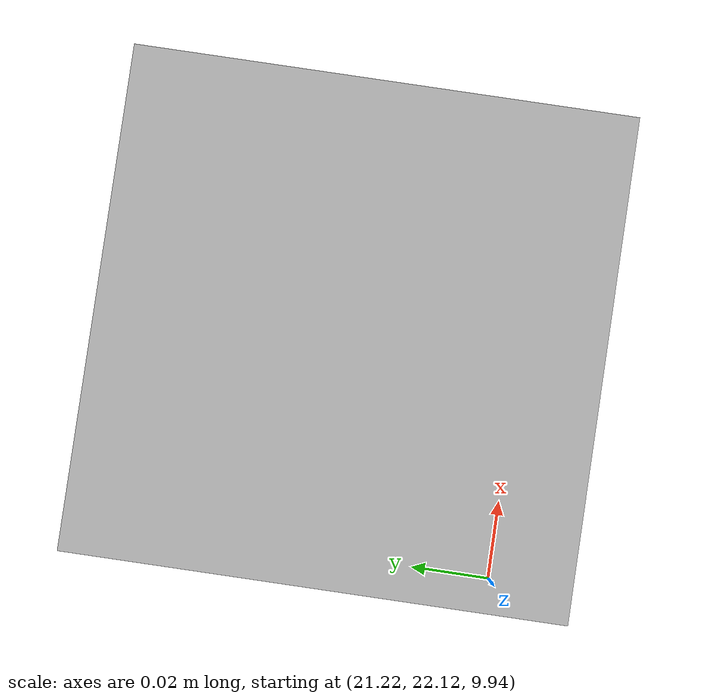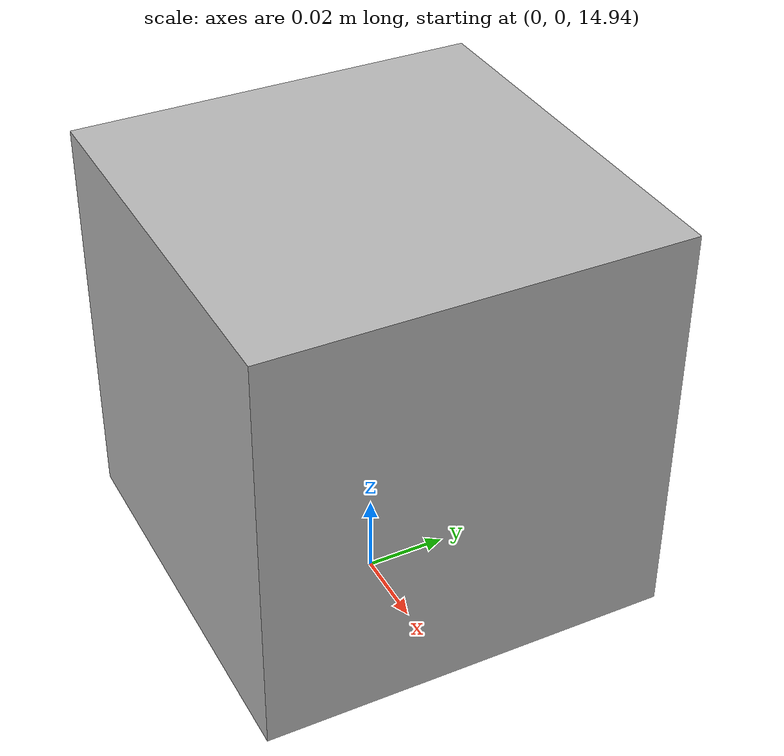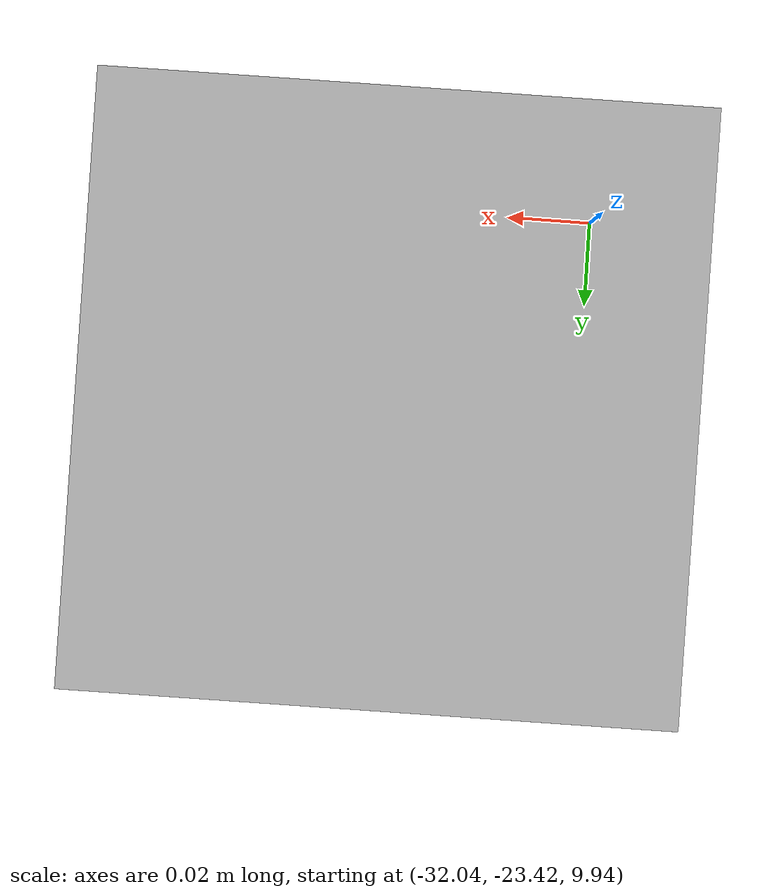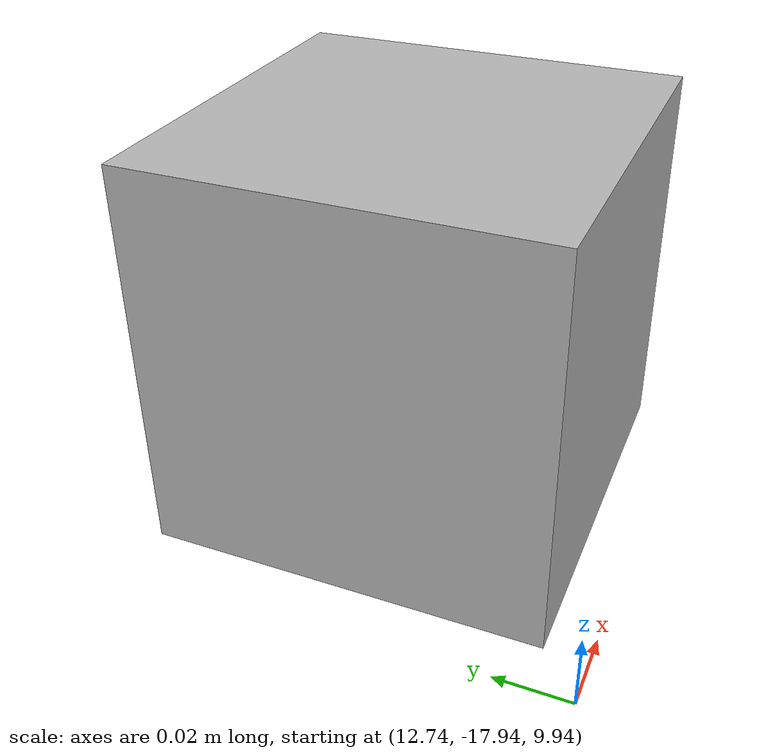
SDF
<sdf version="1.7">
 <world name="default">
  <scene>
   <ambient>0.4 0.4 0.4 1</ambient>
   <background>0.7 0.7 0.7 1</background>
   <shadows>1</shadows>
   <sky><clouds><speed>12</speed></clouds></sky>
   <fog><type>linear</type><start>10</start><end>500</end><density>1</density></fog>
  </scene>
  <include><uri>model://ground_plane</uri></include>
  <include><uri>model://sun</uri></include>
  <model name="camera_1">
   <static>true</static>
   <pose>21.273 22.1639 10 0 -1.57 0</pose>
   <link name="link">
    <visual name="visual"><geometry><box><size>0.1 0.1 0.1</size></box></geometry></visual>
    <sensor name="camera" type="wideanglecamera">
     <camera>
      <horizontal_fov>3.14</horizontal_fov>
      <image><width>720</width><height>720</height></image>
      <clip><near>0.1</near><far>100</far></clip>
      <lens>
       <type>custom</type>
       <custom_function><c1>1.0</c1><c2>1.95</c2><f>6</f><fun>tan</fun></custom_function>
       <scale_to_hfov>true</scale_to_hfov>
       <cutoff_angle>3.0</cutoff_angle>
       <env_texture_size>512</env_texture_size>
      </lens>
      <always_on>0</always_on>
      <update_rate>10</update_rate>
      <visualize>true</visualize>
     </camera>
     <plugin name="camera_controller" filename="libgazebo_ros_camera.so">
      <alwaysOn>true</alwaysOn>
      <updateRate>10.0</updateRate>
      <cameraName>camera_1</cameraName>
      <imageTopicName>image_raw</imageTopicName>
      <cameraInfoTopicName>camera_1_info</cameraInfoTopicName>
      <frameName>link</frameName>
      <hackBaseline>0.07</hackBaseline>
      <distortionK1>0.0</distortionK1>
      <distortionK2>0.0</distortionK2>
      <distortionK3>0.0</distortionK3>
      <distortionT1>0.0</distortionT1>
      <distortionT2>0.0</distortionT2>
     </plugin>
    </sensor>
   </link>
  </model>
  <model name="camera_2">
   <static>true</static>
   <pose>12.7938 -17.8808 10 0 -1.57 0</pose>
   <link name="link">
    <visual name="visual"><geometry><box><size>0.1 0.1 0.1</size></box></geometry></visual>
    <sensor name="camera" type="wideanglecamera">
     <camera>
      <horizontal_fov>3.14</horizontal_fov>
      <image><width>720</width><height>720</height></image>
      <clip><near>0.1</near><far>100</far></clip>
      <lens>
       <type>custom</type>
       <custom_function><c1>1.0</c1><c2>1.95</c2><f>6</f><fun>tan</fun></custom_function>
       <scale_to_hfov>true</scale_to_hfov>
       <cutoff_angle>3.0</cutoff_angle>
       <env_texture_size>512</env_texture_size>
      </lens>
      <always_on>0</always_on>
      <update_rate>130</update_rate>
      <visualize>true</visualize>
     </camera>
     <plugin name="camera_controller" filename="libgazebo_ros_camera.so">
      <alwaysOn>true</alwaysOn>
      <updateRate>10.0</updateRate>
      <cameraName>camera_2</cameraName>
      <imageTopicName>image_raw</imageTopicName>
      <cameraInfoTopicName>camera_2_info</cameraInfoTopicName>
      <frameName>link</frameName>
      <hackBaseline>0.07</hackBaseline>
      <distortionK1>0.0</distortionK1>
      <distortionK2>0.0</distortionK2>
      <distortionK3>0.0</distortionK3>
      <distortionT1>0.0</distortionT1>
      <distortionT2>0.0</distortionT2>
     </plugin>
    </sensor>
   </link>
  </model>
  <model name="camera_3">
   <static>true</static>
   <pose>-31.9943 -23.3745 10 0 -1.57 0</pose>
   <link name="link">
    <visual name="visual"><geometry><box><size>0.1 0.1 0.1</size></box></geometry></visual>
    <sensor name="camera" type="wideanglecamera">
     <camera>
      <horizontal_fov>3.14</horizontal_fov>
      <image><width>720</width><height>720</height></image>
      <clip><near>0.1</near><far>100</far></clip>
      <lens>
       <type>custom</type>
       <custom_function><c1>1.0</c1><c2>1.95</c2><f>6</f><fun>tan</fun></custom_function>
       <scale_to_hfov>true</scale_to_hfov>
       <cutoff_angle>3.0</cutoff_angle>
       <env_texture_size>512</env_texture_size>
      </lens>
      <always_on>0</always_on>
      <update_rate>10</update_rate>
      <visualize>false</visualize>
     </camera>
     <plugin name="camera_controller" filename="libgazebo_ros_camera.so">
      <alwaysOn>true</alwaysOn>
      <updateRate>10.0</updateRate>
      <cameraName>camera_3</cameraName>
      <imageTopicName>image_raw</imageTopicName>
      <cameraInfoTopicName>camera_3_info</cameraInfoTopicName>
      <frameName>link</frameName>
      <hackBaseline>0.07</hackBaseline>
      <distortionK1>0.0</distortionK1>
      <distortionK2>0.0</distortionK2>
      <distortionK3>0.0</distortionK3>
      <distortionT1>0.0</distortionT1>
      <distortionT2>0.0</distortionT2>
     </plugin>
    </sensor>
   </link>
  </model>
  <model name="camera_4">
   <static>true</static>
   <pose>0 0 15 0 0 0</pose>
   <link name="link">
    <visual name="visual"><geometry><box><size>0.1 0.1 0.1</size></box></geometry></visual>
    <sensor name="camera" type="wideanglecamera">
     <camera>
      <horizontal_fov>3.14</horizontal_fov>
      <image><width>720</width><height>720</height></image>
      <clip><near>0.1</near><far>100</far></clip>
      <lens>
       <type>custom</type>
       <custom_function><c1>1.0</c1><c2>1.95</c2><f>6</f><fun>tan</fun></custom_function>
       <scale_to_hfov>true</scale_to_hfov>
       <cutoff_angle>3.0</cutoff_angle>
       <env_texture_size>512</env_texture_size>
      </lens>
      <always_on>0</always_on>
      <update_rate>10</update_rate>
      <visualize>false</visualize>
     </camera>
     <plugin name="camera_controller" filename="libgazebo_ros_camera.so">
      <alwaysOn>true</alwaysOn>
      <updateRate>10.0</updateRate>
      <cameraName>camera_4</cameraName>
      <imageTopicName>image_raw</imageTopicName>
      <cameraInfoTopicName>camera_4_info</cameraInfoTopicName>
      <frameName>link</frameName>
      <hackBaseline>0.07</hackBaseline>
      <distortionK1>0.0</distortionK1>
      <distortionK2>0.0</distortionK2>
      <distortionK3>0.0</distortionK3>
      <distortionT1>0.0</distortionT1>
      <distortionT2>0.0</distortionT2>
     </plugin>
    </sensor>
   </link>
  </model>
 </world>
</sdf>
